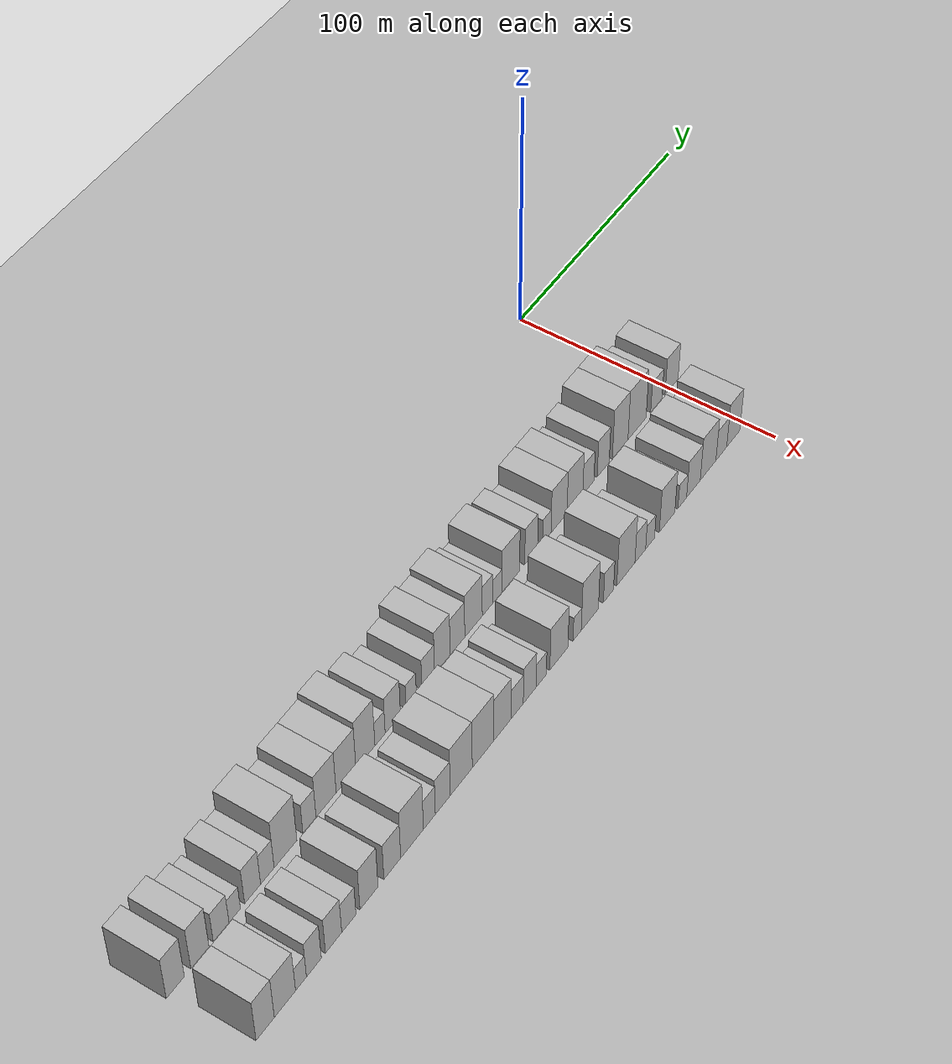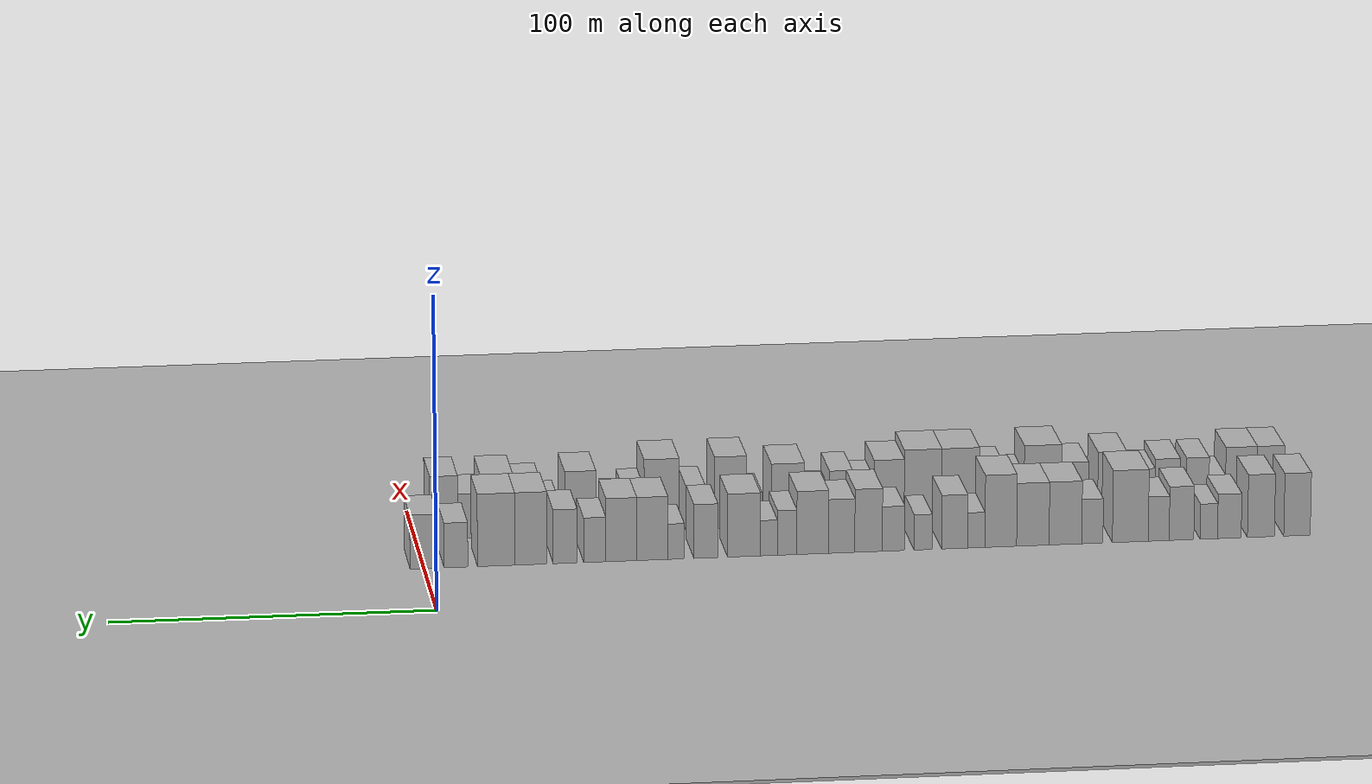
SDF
<sdf version="1.6">
 <world name="default">
  <include><name>ground_plane_1</name><uri>model://HANNAS_ground_plane</uri></include>
  <include>
   <name>ground_plane_2</name>
   <uri>model://HANNAS_ground_plane</uri>
   <pose>100 0 0  0 0 0</pose>
  </include>
  <model name="building_1">
   <static>1</static>
   <pose>50.0000 -273.7978 0 0.000000 0.000000 0.000000</pose>
   <link name="link">
    <pose>0 0 10.50 0 0 0</pose>
    <collision name="collision"><geometry><box><size>20.0000 8.4044 21.0000</size></box></geometry></collision>
    <visual name="visual">
     <cast_shadows>0</cast_shadows>
     <geometry><box><size>20.0000 8.4044 21.0000</size></box></geometry>
     <material>
      <script>
       <uri>model://HANNAS_wall/materials/scripts</uri>
       <uri>model://HANNAS_wall/materials/textures</uri>
       <name>vrc/HANNAS_wall</name>
      </script>
     </material>
    </visual>
   </link>
  </model>
  <model name="building_2">
   <static>1</static>
   <pose>50.0000 -262.3265 0 0.000000 0.000000 0.000000</pose>
   <link name="link">
    <pose>0 0 10.50 0 0 0</pose>
    <collision name="collision"><geometry><box><size>20.0000 8.5382 21.0000</size></box></geometry></collision>
    <visual name="visual">
     <cast_shadows>0</cast_shadows>
     <geometry><box><size>20.0000 8.5382 21.0000</size></box></geometry>
     <material>
      <script>
       <uri>model://HANNAS_wall/materials/scripts</uri>
       <uri>model://HANNAS_wall/materials/textures</uri>
       <name>vrc/HANNAS_wall</name>
      </script>
     </material>
    </visual>
   </link>
  </model>
  <model name="building_3">
   <static>1</static>
   <pose>50.0000 -252.3087 0 0.000000 0.000000 0.000000</pose>
   <link name="link">
    <pose>0 0 7.50 0 0 0</pose>
    <collision name="collision"><geometry><box><size>20.0000 7.4974 15.0000</size></box></geometry></collision>
    <visual name="visual">
     <cast_shadows>0</cast_shadows>
     <geometry><box><size>20.0000 7.4974 15.0000</size></box></geometry>
     <material>
      <script>
       <uri>model://HANNAS_wall/materials/scripts</uri>
       <uri>model://HANNAS_wall/materials/textures</uri>
       <name>vrc/HANNAS_wall</name>
      </script>
     </material>
    </visual>
   </link>
  </model>
  <model name="building_4">
   <static>1</static>
   <pose>50.0000 -245.8034 0 0.000000 0.000000 0.000000</pose>
   <link name="link">
    <pose>0 0 6.00 0 0 0</pose>
    <collision name="collision"><geometry><box><size>20.0000 5.5133 12.0000</size></box></geometry></collision>
    <visual name="visual">
     <cast_shadows>0</cast_shadows>
     <geometry><box><size>20.0000 5.5133 12.0000</size></box></geometry>
     <material>
      <script>
       <uri>model://HANNAS_wall/materials/scripts</uri>
       <uri>model://HANNAS_wall/materials/textures</uri>
       <name>vrc/HANNAS_wall</name>
      </script>
     </material>
    </visual>
   </link>
  </model>
  <model name="building_5">
   <static>1</static>
   <pose>50.0000 -237.1471 0 0.000000 0.000000 0.000000</pose>
   <link name="link">
    <pose>0 0 9.00 0 0 0</pose>
    <collision name="collision"><geometry><box><size>20.0000 7.7992 18.0000</size></box></geometry></collision>
    <visual name="visual">
     <cast_shadows>0</cast_shadows>
     <geometry><box><size>20.0000 7.7992 18.0000</size></box></geometry>
     <material>
      <script>
       <uri>model://HANNAS_wall/materials/scripts</uri>
       <uri>model://HANNAS_wall/materials/textures</uri>
       <name>vrc/HANNAS_wall</name>
      </script>
     </material>
    </visual>
   </link>
  </model>
  <model name="building_6">
   <static>1</static>
   <pose>50.0000 -229.9238 0 0.000000 0.000000 0.000000</pose>
   <link name="link">
    <pose>0 0 7.50 0 0 0</pose>
    <collision name="collision"><geometry><box><size>20.0000 6.6475 15.0000</size></box></geometry></collision>
    <visual name="visual">
     <cast_shadows>0</cast_shadows>
     <geometry><box><size>20.0000 6.6475 15.0000</size></box></geometry>
     <material>
      <script>
       <uri>model://HANNAS_wall/materials/scripts</uri>
       <uri>model://HANNAS_wall/materials/textures</uri>
       <name>vrc/HANNAS_wall</name>
      </script>
     </material>
    </visual>
   </link>
  </model>
  <model name="building_7">
   <static>1</static>
   <pose>50.0000 -220.9443 0 0.000000 0.000000 0.000000</pose>
   <link name="link">
    <pose>0 0 12.00 0 0 0</pose>
    <collision name="collision"><geometry><box><size>20.0000 11.3114 24.0000</size></box></geometry></collision>
    <visual name="visual">
     <cast_shadows>0</cast_shadows>
     <geometry><box><size>20.0000 11.3114 24.0000</size></box></geometry>
     <material>
      <script>
       <uri>model://HANNAS_wall/materials/scripts</uri>
       <uri>model://HANNAS_wall/materials/textures</uri>
       <name>vrc/HANNAS_wall</name>
      </script>
     </material>
    </visual>
   </link>
  </model>
  <model name="building_8">
   <static>1</static>
   <pose>50.0000 -208.9411 0 0.000000 0.000000 0.000000</pose>
   <link name="link">
    <pose>0 0 7.50 0 0 0</pose>
    <collision name="collision"><geometry><box><size>20.0000 6.6950 15.0000</size></box></geometry></collision>
    <visual name="visual">
     <cast_shadows>0</cast_shadows>
     <geometry><box><size>20.0000 6.6950 15.0000</size></box></geometry>
     <material>
      <script>
       <uri>model://HANNAS_wall/materials/scripts</uri>
       <uri>model://HANNAS_wall/materials/textures</uri>
       <name>vrc/HANNAS_wall</name>
      </script>
     </material>
    </visual>
   </link>
  </model>
  <model name="building_9">
   <static>1</static>
   <pose>50.0000 -200.4397 0 0.000000 0.000000 0.000000</pose>
   <link name="link">
    <pose>0 0 10.50 0 0 0</pose>
    <collision name="collision"><geometry><box><size>20.0000 10.3080 21.0000</size></box></geometry></collision>
    <visual name="visual">
     <cast_shadows>0</cast_shadows>
     <geometry><box><size>20.0000 10.3080 21.0000</size></box></geometry>
     <material>
      <script>
       <uri>model://HANNAS_wall/materials/scripts</uri>
       <uri>model://HANNAS_wall/materials/textures</uri>
       <name>vrc/HANNAS_wall</name>
      </script>
     </material>
    </visual>
   </link>
  </model>
  <model name="building_10">
   <static>1</static>
   <pose>50.0000 -190.1663 0 0.000000 0.000000 0.000000</pose>
   <link name="link">
    <pose>0 0 10.50 0 0 0</pose>
    <collision name="collision"><geometry><box><size>20.0000 10.2386 21.0000</size></box></geometry></collision>
    <visual name="visual">
     <cast_shadows>0</cast_shadows>
     <geometry><box><size>20.0000 10.2386 21.0000</size></box></geometry>
     <material>
      <script>
       <uri>model://HANNAS_wall/materials/scripts</uri>
       <uri>model://HANNAS_wall/materials/textures</uri>
       <name>vrc/HANNAS_wall</name>
      </script>
     </material>
    </visual>
   </link>
  </model>
  <model name="building_11">
   <static>1</static>
   <pose>50.0000 -180.0486 0 0.000000 0.000000 0.000000</pose>
   <link name="link">
    <pose>0 0 12.00 0 0 0</pose>
    <collision name="collision"><geometry><box><size>20.0000 9.9968 24.0000</size></box></geometry></collision>
    <visual name="visual">
     <cast_shadows>0</cast_shadows>
     <geometry><box><size>20.0000 9.9968 24.0000</size></box></geometry>
     <material>
      <script>
       <uri>model://HANNAS_wall/materials/scripts</uri>
       <uri>model://HANNAS_wall/materials/textures</uri>
       <name>vrc/HANNAS_wall</name>
      </script>
     </material>
    </visual>
   </link>
  </model>
  <model name="building_12">
   <static>1</static>
   <pose>50.0000 -172.3414 0 0.000000 0.000000 0.000000</pose>
   <link name="link">
    <pose>0 0 6.00 0 0 0</pose>
    <collision name="collision"><geometry><box><size>20.0000 5.4176 12.0000</size></box></geometry></collision>
    <visual name="visual">
     <cast_shadows>0</cast_shadows>
     <geometry><box><size>20.0000 5.4176 12.0000</size></box></geometry>
     <material>
      <script>
       <uri>model://HANNAS_wall/materials/scripts</uri>
       <uri>model://HANNAS_wall/materials/textures</uri>
       <name>vrc/HANNAS_wall</name>
      </script>
     </material>
    </visual>
   </link>
  </model>
  <model name="building_13">
   <static>1</static>
   <pose>50.0000 -165.5257 0 0.000000 0.000000 0.000000</pose>
   <link name="link">
    <pose>0 0 9.00 0 0 0</pose>
    <collision name="collision"><geometry><box><size>20.0000 8.2139 18.0000</size></box></geometry></collision>
    <visual name="visual">
     <cast_shadows>0</cast_shadows>
     <geometry><box><size>20.0000 8.2139 18.0000</size></box></geometry>
     <material>
      <script>
       <uri>model://HANNAS_wall/materials/scripts</uri>
       <uri>model://HANNAS_wall/materials/textures</uri>
       <name>vrc/HANNAS_wall</name>
      </script>
     </material>
    </visual>
   </link>
  </model>
  <model name="building_14">
   <static>1</static>
   <pose>50.0000 -155.6016 0 0.000000 0.000000 0.000000</pose>
   <link name="link">
    <pose>0 0 6.00 0 0 0</pose>
    <collision name="collision"><geometry><box><size>20.0000 5.6343 12.0000</size></box></geometry></collision>
    <visual name="visual">
     <cast_shadows>0</cast_shadows>
     <geometry><box><size>20.0000 5.6343 12.0000</size></box></geometry>
     <material>
      <script>
       <uri>model://HANNAS_wall/materials/scripts</uri>
       <uri>model://HANNAS_wall/materials/textures</uri>
       <name>vrc/HANNAS_wall</name>
      </script>
     </material>
    </visual>
   </link>
  </model>
  <model name="building_15">
   <static>1</static>
   <pose>50.0000 -146.2886 0 0.000000 0.000000 0.000000</pose>
   <link name="link">
    <pose>0 0 7.50 0 0 0</pose>
    <collision name="collision"><geometry><box><size>20.0000 6.9917 15.0000</size></box></geometry></collision>
    <visual name="visual">
     <cast_shadows>0</cast_shadows>
     <geometry><box><size>20.0000 6.9917 15.0000</size></box></geometry>
     <material>
      <script>
       <uri>model://HANNAS_wall/materials/scripts</uri>
       <uri>model://HANNAS_wall/materials/textures</uri>
       <name>vrc/HANNAS_wall</name>
      </script>
     </material>
    </visual>
   </link>
  </model>
  <model name="building_16">
   <static>1</static>
   <pose>50.0000 -138.4648 0 0.000000 0.000000 0.000000</pose>
   <link name="link">
    <pose>0 0 10.50 0 0 0</pose>
    <collision name="collision"><geometry><box><size>20.0000 8.6559 21.0000</size></box></geometry></collision>
    <visual name="visual">
     <cast_shadows>0</cast_shadows>
     <geometry><box><size>20.0000 8.6559 21.0000</size></box></geometry>
     <material>
      <script>
       <uri>model://HANNAS_wall/materials/scripts</uri>
       <uri>model://HANNAS_wall/materials/textures</uri>
       <name>vrc/HANNAS_wall</name>
      </script>
     </material>
    </visual>
   </link>
  </model>
  <model name="building_17">
   <static>1</static>
   <pose>50.0000 -130.0193 0 0.000000 0.000000 0.000000</pose>
   <link name="link">
    <pose>0 0 9.00 0 0 0</pose>
    <collision name="collision"><geometry><box><size>20.0000 8.2351 18.0000</size></box></geometry></collision>
    <visual name="visual">
     <cast_shadows>0</cast_shadows>
     <geometry><box><size>20.0000 8.2351 18.0000</size></box></geometry>
     <material>
      <script>
       <uri>model://HANNAS_wall/materials/scripts</uri>
       <uri>model://HANNAS_wall/materials/textures</uri>
       <name>vrc/HANNAS_wall</name>
      </script>
     </material>
    </visual>
   </link>
  </model>
  <model name="building_18">
   <static>1</static>
   <pose>50.0000 -120.9376 0 0.000000 0.000000 0.000000</pose>
   <link name="link">
    <pose>0 0 10.50 0 0 0</pose>
    <collision name="collision"><geometry><box><size>20.0000 9.9283 21.0000</size></box></geometry></collision>
    <visual name="visual">
     <cast_shadows>0</cast_shadows>
     <geometry><box><size>20.0000 9.9283 21.0000</size></box></geometry>
     <material>
      <script>
       <uri>model://HANNAS_wall/materials/scripts</uri>
       <uri>model://HANNAS_wall/materials/textures</uri>
       <name>vrc/HANNAS_wall</name>
      </script>
     </material>
    </visual>
   </link>
  </model>
  <model name="building_19">
   <static>1</static>
   <pose>50.0000 -112.9268 0 0.000000 0.000000 0.000000</pose>
   <link name="link">
    <pose>0 0 7.50 0 0 0</pose>
    <collision name="collision"><geometry><box><size>20.0000 6.0931 15.0000</size></box></geometry></collision>
    <visual name="visual">
     <cast_shadows>0</cast_shadows>
     <geometry><box><size>20.0000 6.0931 15.0000</size></box></geometry>
     <material>
      <script>
       <uri>model://HANNAS_wall/materials/scripts</uri>
       <uri>model://HANNAS_wall/materials/textures</uri>
       <name>vrc/HANNAS_wall</name>
      </script>
     </material>
    </visual>
   </link>
  </model>
  <model name="building_20">
   <static>1</static>
   <pose>50.0000 -107.2331 0 0.000000 0.000000 0.000000</pose>
   <link name="link">
    <pose>0 0 6.00 0 0 0</pose>
    <collision name="collision"><geometry><box><size>20.0000 5.2942 12.0000</size></box></geometry></collision>
    <visual name="visual">
     <cast_shadows>0</cast_shadows>
     <geometry><box><size>20.0000 5.2942 12.0000</size></box></geometry>
     <material>
      <script>
       <uri>model://HANNAS_wall/materials/scripts</uri>
       <uri>model://HANNAS_wall/materials/textures</uri>
       <name>vrc/HANNAS_wall</name>
      </script>
     </material>
    </visual>
   </link>
  </model>
  <model name="building_21">
   <static>1</static>
   <pose>50.0000 -99.4346 0 0.000000 0.000000 0.000000</pose>
   <link name="link">
    <pose>0 0 10.50 0 0 0</pose>
    <collision name="collision"><geometry><box><size>20.0000 10.3028 21.0000</size></box></geometry></collision>
    <visual name="visual">
     <cast_shadows>0</cast_shadows>
     <geometry><box><size>20.0000 10.3028 21.0000</size></box></geometry>
     <material>
      <script>
       <uri>model://HANNAS_wall/materials/scripts</uri>
       <uri>model://HANNAS_wall/materials/textures</uri>
       <name>vrc/HANNAS_wall</name>
      </script>
     </material>
    </visual>
   </link>
  </model>
  <model name="building_22">
   <static>1</static>
   <pose>50.0000 -87.5052 0 0.000000 0.000000 0.000000</pose>
   <link name="link">
    <pose>0 0 9.00 0 0 0</pose>
    <collision name="collision"><geometry><box><size>20.0000 7.5561 18.0000</size></box></geometry></collision>
    <visual name="visual">
     <cast_shadows>0</cast_shadows>
     <geometry><box><size>20.0000 7.5561 18.0000</size></box></geometry>
     <material>
      <script>
       <uri>model://HANNAS_wall/materials/scripts</uri>
       <uri>model://HANNAS_wall/materials/textures</uri>
       <name>vrc/HANNAS_wall</name>
      </script>
     </material>
    </visual>
   </link>
  </model>
  <model name="building_23">
   <static>1</static>
   <pose>50.0000 -78.1779 0 0.000000 0.000000 0.000000</pose>
   <link name="link">
    <pose>0 0 6.00 0 0 0</pose>
    <collision name="collision"><geometry><box><size>20.0000 5.0985 12.0000</size></box></geometry></collision>
    <visual name="visual">
     <cast_shadows>0</cast_shadows>
     <geometry><box><size>20.0000 5.0985 12.0000</size></box></geometry>
     <material>
      <script>
       <uri>model://HANNAS_wall/materials/scripts</uri>
       <uri>model://HANNAS_wall/materials/textures</uri>
       <name>vrc/HANNAS_wall</name>
      </script>
     </material>
    </visual>
   </link>
  </model>
  <model name="building_24">
   <static>1</static>
   <pose>50.0000 -70.7922 0 0.000000 0.000000 0.000000</pose>
   <link name="link">
    <pose>0 0 10.50 0 0 0</pose>
    <collision name="collision"><geometry><box><size>20.0000 9.6729 21.0000</size></box></geometry></collision>
    <visual name="visual">
     <cast_shadows>0</cast_shadows>
     <geometry><box><size>20.0000 9.6729 21.0000</size></box></geometry>
     <material>
      <script>
       <uri>model://HANNAS_wall/materials/scripts</uri>
       <uri>model://HANNAS_wall/materials/textures</uri>
       <name>vrc/HANNAS_wall</name>
      </script>
     </material>
    </visual>
   </link>
  </model>
  <model name="building_25">
   <static>1</static>
   <pose>50.0000 -61.1262 0 0.000000 0.000000 0.000000</pose>
   <link name="link">
    <pose>0 0 10.50 0 0 0</pose>
    <collision name="collision"><geometry><box><size>20.0000 9.6592 21.0000</size></box></geometry></collision>
    <visual name="visual">
     <cast_shadows>0</cast_shadows>
     <geometry><box><size>20.0000 9.6592 21.0000</size></box></geometry>
     <material>
      <script>
       <uri>model://HANNAS_wall/materials/scripts</uri>
       <uri>model://HANNAS_wall/materials/textures</uri>
       <name>vrc/HANNAS_wall</name>
      </script>
     </material>
    </visual>
   </link>
  </model>
  <model name="building_26">
   <static>1</static>
   <pose>50.0000 -52.8360 0 0.000000 0.000000 0.000000</pose>
   <link name="link">
    <pose>0 0 7.50 0 0 0</pose>
    <collision name="collision"><geometry><box><size>20.0000 6.9211 15.0000</size></box></geometry></collision>
    <visual name="visual">
     <cast_shadows>0</cast_shadows>
     <geometry><box><size>20.0000 6.9211 15.0000</size></box></geometry>
     <material>
      <script>
       <uri>model://HANNAS_wall/materials/scripts</uri>
       <uri>model://HANNAS_wall/materials/textures</uri>
       <name>vrc/HANNAS_wall</name>
      </script>
     </material>
    </visual>
   </link>
  </model>
  <model name="building_27">
   <static>1</static>
   <pose>50.0000 -43.6139 0 0.000000 0.000000 0.000000</pose>
   <link name="link">
    <pose>0 0 9.00 0 0 0</pose>
    <collision name="collision"><geometry><box><size>20.0000 7.5232 18.0000</size></box></geometry></collision>
    <visual name="visual">
     <cast_shadows>0</cast_shadows>
     <geometry><box><size>20.0000 7.5232 18.0000</size></box></geometry>
     <material>
      <script>
       <uri>model://HANNAS_wall/materials/scripts</uri>
       <uri>model://HANNAS_wall/materials/textures</uri>
       <name>vrc/HANNAS_wall</name>
      </script>
     </material>
    </visual>
   </link>
  </model>
  <model name="building_28">
   <static>1</static>
   <pose>50.0000 -32.9053 0 0.000000 0.000000 0.000000</pose>
   <link name="link">
    <pose>0 0 12.00 0 0 0</pose>
    <collision name="collision"><geometry><box><size>20.0000 9.8939 24.0000</size></box></geometry></collision>
    <visual name="visual">
     <cast_shadows>0</cast_shadows>
     <geometry><box><size>20.0000 9.8939 24.0000</size></box></geometry>
     <material>
      <script>
       <uri>model://HANNAS_wall/materials/scripts</uri>
       <uri>model://HANNAS_wall/materials/textures</uri>
       <name>vrc/HANNAS_wall</name>
      </script>
     </material>
    </visual>
   </link>
  </model>
  <model name="building_29">
   <static>1</static>
   <pose>50.0000 -22.1314 0 0.000000 0.000000 0.000000</pose>
   <link name="link">
    <pose>0 0 12.00 0 0 0</pose>
    <collision name="collision"><geometry><box><size>20.0000 11.6541 24.0000</size></box></geometry></collision>
    <visual name="visual">
     <cast_shadows>0</cast_shadows>
     <geometry><box><size>20.0000 11.6541 24.0000</size></box></geometry>
     <material>
      <script>
       <uri>model://HANNAS_wall/materials/scripts</uri>
       <uri>model://HANNAS_wall/materials/textures</uri>
       <name>vrc/HANNAS_wall</name>
      </script>
     </material>
    </visual>
   </link>
  </model>
  <model name="building_30">
   <static>1</static>
   <pose>50.0000 -9.6206 0 0.000000 0.000000 0.000000</pose>
   <link name="link">
    <pose>0 0 7.50 0 0 0</pose>
    <collision name="collision"><geometry><box><size>20.0000 7.3675 15.0000</size></box></geometry></collision>
    <visual name="visual">
     <cast_shadows>0</cast_shadows>
     <geometry><box><size>20.0000 7.3675 15.0000</size></box></geometry>
     <material>
      <script>
       <uri>model://HANNAS_wall/materials/scripts</uri>
       <uri>model://HANNAS_wall/materials/textures</uri>
       <name>vrc/HANNAS_wall</name>
      </script>
     </material>
    </visual>
   </link>
  </model>
  <model name="building_31">
   <static>1</static>
   <pose>50.0000 0.3576 0 0.000000 0.000000 0.000000</pose>
   <link name="link">
    <pose>0 0 9.00 0 0 0</pose>
    <collision name="collision"><geometry><box><size>20.0000 8.5888 18.0000</size></box></geometry></collision>
    <visual name="visual">
     <cast_shadows>0</cast_shadows>
     <geometry><box><size>20.0000 8.5888 18.0000</size></box></geometry>
     <material>
      <script>
       <uri>model://HANNAS_wall/materials/scripts</uri>
       <uri>model://HANNAS_wall/materials/textures</uri>
       <name>vrc/HANNAS_wall</name>
      </script>
     </material>
    </visual>
   </link>
  </model>
  <model name="building_62">
   <static>1</static>
   <pose>79.0000 -270.6791 0 0.000000 0.000000 0.000000</pose>
   <link name="link">
    <pose>0 0 10.50 0 0 0</pose>
    <collision name="collision"><geometry><box><size>20.0000 8.6419 21.0000</size></box></geometry></collision>
    <visual name="visual">
     <cast_shadows>0</cast_shadows>
     <geometry><box><size>20.0000 8.6419 21.0000</size></box></geometry>
     <material>
      <script>
       <uri>model://HANNAS_wall/materials/scripts</uri>
       <uri>model://HANNAS_wall/materials/textures</uri>
       <name>vrc/HANNAS_wall</name>
      </script>
     </material>
    </visual>
   </link>
  </model>
  <model name="building_63">
   <static>1</static>
   <pose>79.0000 -261.2959 0 0.000000 0.000000 0.000000</pose>
   <link name="link">
    <pose>0 0 10.50 0 0 0</pose>
    <collision name="collision"><geometry><box><size>20.0000 10.1245 21.0000</size></box></geometry></collision>
    <visual name="visual">
     <cast_shadows>0</cast_shadows>
     <geometry><box><size>20.0000 10.1245 21.0000</size></box></geometry>
     <material>
      <script>
       <uri>model://HANNAS_wall/materials/scripts</uri>
       <uri>model://HANNAS_wall/materials/textures</uri>
       <name>vrc/HANNAS_wall</name>
      </script>
     </material>
    </visual>
   </link>
  </model>
  <model name="building_64">
   <static>1</static>
   <pose>79.0000 -253.6037 0 0.000000 0.000000 0.000000</pose>
   <link name="link">
    <pose>0 0 6.00 0 0 0</pose>
    <collision name="collision"><geometry><box><size>20.0000 5.2600 12.0000</size></box></geometry></collision>
    <visual name="visual">
     <cast_shadows>0</cast_shadows>
     <geometry><box><size>20.0000 5.2600 12.0000</size></box></geometry>
     <material>
      <script>
       <uri>model://HANNAS_wall/materials/scripts</uri>
       <uri>model://HANNAS_wall/materials/textures</uri>
       <name>vrc/HANNAS_wall</name>
      </script>
     </material>
    </visual>
   </link>
  </model>
  <model name="building_65">
   <static>1</static>
   <pose>79.0000 -247.3460 0 0.000000 0.000000 0.000000</pose>
   <link name="link">
    <pose>0 0 9.00 0 0 0</pose>
    <collision name="collision"><geometry><box><size>20.0000 7.2553 18.0000</size></box></geometry></collision>
    <visual name="visual">
     <cast_shadows>0</cast_shadows>
     <geometry><box><size>20.0000 7.2553 18.0000</size></box></geometry>
     <material>
      <script>
       <uri>model://HANNAS_wall/materials/scripts</uri>
       <uri>model://HANNAS_wall/materials/textures</uri>
       <name>vrc/HANNAS_wall</name>
      </script>
     </material>
    </visual>
   </link>
  </model>
  <model name="building_66">
   <static>1</static>
   <pose>79.0000 -237.7049 0 0.000000 0.000000 0.000000</pose>
   <link name="link">
    <pose>0 0 9.00 0 0 0</pose>
    <collision name="collision"><geometry><box><size>20.0000 8.0270 18.0000</size></box></geometry></collision>
    <visual name="visual">
     <cast_shadows>0</cast_shadows>
     <geometry><box><size>20.0000 8.0270 18.0000</size></box></geometry>
     <material>
      <script>
       <uri>model://HANNAS_wall/materials/scripts</uri>
       <uri>model://HANNAS_wall/materials/textures</uri>
       <name>vrc/HANNAS_wall</name>
      </script>
     </material>
    </visual>
   </link>
  </model>
  <model name="building_67">
   <static>1</static>
   <pose>79.0000 -230.1303 0 0.000000 0.000000 0.000000</pose>
   <link name="link">
    <pose>0 0 7.50 0 0 0</pose>
    <collision name="collision"><geometry><box><size>20.0000 7.1221 15.0000</size></box></geometry></collision>
    <visual name="visual">
     <cast_shadows>0</cast_shadows>
     <geometry><box><size>20.0000 7.1221 15.0000</size></box></geometry>
     <material>
      <script>
       <uri>model://HANNAS_wall/materials/scripts</uri>
       <uri>model://HANNAS_wall/materials/textures</uri>
       <name>vrc/HANNAS_wall</name>
      </script>
     </material>
    </visual>
   </link>
  </model>
  <model name="building_68">
   <static>1</static>
   <pose>79.0000 -220.0024 0 0.000000 0.000000 0.000000</pose>
   <link name="link">
    <pose>0 0 10.50 0 0 0</pose>
    <collision name="collision"><geometry><box><size>20.0000 9.1338 21.0000</size></box></geometry></collision>
    <visual name="visual">
     <cast_shadows>0</cast_shadows>
     <geometry><box><size>20.0000 9.1338 21.0000</size></box></geometry>
     <material>
      <script>
       <uri>model://HANNAS_wall/materials/scripts</uri>
       <uri>model://HANNAS_wall/materials/textures</uri>
       <name>vrc/HANNAS_wall</name>
      </script>
     </material>
    </visual>
   </link>
  </model>
  <model name="building_69">
   <static>1</static>
   <pose>79.0000 -208.1065 0 0.000000 0.000000 0.000000</pose>
   <link name="link">
    <pose>0 0 9.00 0 0 0</pose>
    <collision name="collision"><geometry><box><size>20.0000 8.6578 18.0000</size></box></geometry></collision>
    <visual name="visual">
     <cast_shadows>0</cast_shadows>
     <geometry><box><size>20.0000 8.6578 18.0000</size></box></geometry>
     <material>
      <script>
       <uri>model://HANNAS_wall/materials/scripts</uri>
       <uri>model://HANNAS_wall/materials/textures</uri>
       <name>vrc/HANNAS_wall</name>
      </script>
     </material>
    </visual>
   </link>
  </model>
  <model name="building_70">
   <static>1</static>
   <pose>79.0000 -197.8591 0 0.000000 0.000000 0.000000</pose>
   <link name="link">
    <pose>0 0 12.00 0 0 0</pose>
    <collision name="collision"><geometry><box><size>20.0000 11.8370 24.0000</size></box></geometry></collision>
    <visual name="visual">
     <cast_shadows>0</cast_shadows>
     <geometry><box><size>20.0000 11.8370 24.0000</size></box></geometry>
     <material>
      <script>
       <uri>model://HANNAS_wall/materials/scripts</uri>
       <uri>model://HANNAS_wall/materials/textures</uri>
       <name>vrc/HANNAS_wall</name>
      </script>
     </material>
    </visual>
   </link>
  </model>
  <model name="building_71">
   <static>1</static>
   <pose>79.0000 -188.7958 0 0.000000 0.000000 0.000000</pose>
   <link name="link">
    <pose>0 0 7.50 0 0 0</pose>
    <collision name="collision"><geometry><box><size>20.0000 6.2895 15.0000</size></box></geometry></collision>
    <visual name="visual">
     <cast_shadows>0</cast_shadows>
     <geometry><box><size>20.0000 6.2895 15.0000</size></box></geometry>
     <material>
      <script>
       <uri>model://HANNAS_wall/materials/scripts</uri>
       <uri>model://HANNAS_wall/materials/textures</uri>
       <name>vrc/HANNAS_wall</name>
      </script>
     </material>
    </visual>
   </link>
  </model>
  <model name="building_72">
   <static>1</static>
   <pose>79.0000 -181.6646 0 0.000000 0.000000 0.000000</pose>
   <link name="link">
    <pose>0 0 9.00 0 0 0</pose>
    <collision name="collision"><geometry><box><size>20.0000 7.9730 18.0000</size></box></geometry></collision>
    <visual name="visual">
     <cast_shadows>0</cast_shadows>
     <geometry><box><size>20.0000 7.9730 18.0000</size></box></geometry>
     <material>
      <script>
       <uri>model://HANNAS_wall/materials/scripts</uri>
       <uri>model://HANNAS_wall/materials/textures</uri>
       <name>vrc/HANNAS_wall</name>
      </script>
     </material>
    </visual>
   </link>
  </model>
  <model name="building_73">
   <static>1</static>
   <pose>79.0000 -171.7264 0 0.000000 0.000000 0.000000</pose>
   <link name="link">
    <pose>0 0 12.00 0 0 0</pose>
    <collision name="collision"><geometry><box><size>20.0000 11.9034 24.0000</size></box></geometry></collision>
    <visual name="visual">
     <cast_shadows>0</cast_shadows>
     <geometry><box><size>20.0000 11.9034 24.0000</size></box></geometry>
     <material>
      <script>
       <uri>model://HANNAS_wall/materials/scripts</uri>
       <uri>model://HANNAS_wall/materials/textures</uri>
       <name>vrc/HANNAS_wall</name>
      </script>
     </material>
    </visual>
   </link>
  </model>
  <model name="building_74">
   <static>1</static>
   <pose>79.0000 -159.8148 0 0.000000 0.000000 0.000000</pose>
   <link name="link">
    <pose>0 0 12.00 0 0 0</pose>
    <collision name="collision"><geometry><box><size>20.0000 11.9200 24.0000</size></box></geometry></collision>
    <visual name="visual">
     <cast_shadows>0</cast_shadows>
     <geometry><box><size>20.0000 11.9200 24.0000</size></box></geometry>
     <material>
      <script>
       <uri>model://HANNAS_wall/materials/scripts</uri>
       <uri>model://HANNAS_wall/materials/textures</uri>
       <name>vrc/HANNAS_wall</name>
      </script>
     </material>
    </visual>
   </link>
  </model>
  <model name="building_75">
   <static>1</static>
   <pose>79.0000 -149.0634 0 0.000000 0.000000 0.000000</pose>
   <link name="link">
    <pose>0 0 10.50 0 0 0</pose>
    <collision name="collision"><geometry><box><size>20.0000 9.5827 21.0000</size></box></geometry></collision>
    <visual name="visual">
     <cast_shadows>0</cast_shadows>
     <geometry><box><size>20.0000 9.5827 21.0000</size></box></geometry>
     <material>
      <script>
       <uri>model://HANNAS_wall/materials/scripts</uri>
       <uri>model://HANNAS_wall/materials/textures</uri>
       <name>vrc/HANNAS_wall</name>
      </script>
     </material>
    </visual>
   </link>
  </model>
  <model name="building_76">
   <static>1</static>
   <pose>79.0000 -140.8687 0 0.000000 0.000000 0.000000</pose>
   <link name="link">
    <pose>0 0 7.50 0 0 0</pose>
    <collision name="collision"><geometry><box><size>20.0000 6.8067 15.0000</size></box></geometry></collision>
    <visual name="visual">
     <cast_shadows>0</cast_shadows>
     <geometry><box><size>20.0000 6.8067 15.0000</size></box></geometry>
     <material>
      <script>
       <uri>model://HANNAS_wall/materials/scripts</uri>
       <uri>model://HANNAS_wall/materials/textures</uri>
       <name>vrc/HANNAS_wall</name>
      </script>
     </material>
    </visual>
   </link>
  </model>
  <model name="building_77">
   <static>1</static>
   <pose>79.0000 -133.8060 0 0.000000 0.000000 0.000000</pose>
   <link name="link">
    <pose>0 0 9.00 0 0 0</pose>
    <collision name="collision"><geometry><box><size>20.0000 7.3188 18.0000</size></box></geometry></collision>
    <visual name="visual">
     <cast_shadows>0</cast_shadows>
     <geometry><box><size>20.0000 7.3188 18.0000</size></box></geometry>
     <material>
      <script>
       <uri>model://HANNAS_wall/materials/scripts</uri>
       <uri>model://HANNAS_wall/materials/textures</uri>
       <name>vrc/HANNAS_wall</name>
      </script>
     </material>
    </visual>
   </link>
  </model>
  <model name="building_78">
   <static>1</static>
   <pose>79.0000 -127.2104 0 0.000000 0.000000 0.000000</pose>
   <link name="link">
    <pose>0 0 6.00 0 0 0</pose>
    <collision name="collision"><geometry><box><size>20.0000 5.8723 12.0000</size></box></geometry></collision>
    <visual name="visual">
     <cast_shadows>0</cast_shadows>
     <geometry><box><size>20.0000 5.8723 12.0000</size></box></geometry>
     <material>
      <script>
       <uri>model://HANNAS_wall/materials/scripts</uri>
       <uri>model://HANNAS_wall/materials/textures</uri>
       <name>vrc/HANNAS_wall</name>
      </script>
     </material>
    </visual>
   </link>
  </model>
  <model name="building_79">
   <static>1</static>
   <pose>79.0000 -117.0247 0 0.000000 0.000000 0.000000</pose>
   <link name="link">
    <pose>0 0 10.50 0 0 0</pose>
    <collision name="collision"><geometry><box><size>20.0000 10.4992 21.0000</size></box></geometry></collision>
    <visual name="visual">
     <cast_shadows>0</cast_shadows>
     <geometry><box><size>20.0000 10.4992 21.0000</size></box></geometry>
     <material>
      <script>
       <uri>model://HANNAS_wall/materials/scripts</uri>
       <uri>model://HANNAS_wall/materials/textures</uri>
       <name>vrc/HANNAS_wall</name>
      </script>
     </material>
    </visual>
   </link>
  </model>
  <model name="building_80">
   <static>1</static>
   <pose>79.0000 -106.3721 0 0.000000 0.000000 0.000000</pose>
   <link name="link">
    <pose>0 0 6.00 0 0 0</pose>
    <collision name="collision"><geometry><box><size>20.0000 4.8060 12.0000</size></box></geometry></collision>
    <visual name="visual">
     <cast_shadows>0</cast_shadows>
     <geometry><box><size>20.0000 4.8060 12.0000</size></box></geometry>
     <material>
      <script>
       <uri>model://HANNAS_wall/materials/scripts</uri>
       <uri>model://HANNAS_wall/materials/textures</uri>
       <name>vrc/HANNAS_wall</name>
      </script>
     </material>
    </visual>
   </link>
  </model>
  <model name="building_81">
   <static>1</static>
   <pose>79.0000 -98.8822 0 0.000000 0.000000 0.000000</pose>
   <link name="link">
    <pose>0 0 12.00 0 0 0</pose>
    <collision name="collision"><geometry><box><size>20.0000 10.1737 24.0000</size></box></geometry></collision>
    <visual name="visual">
     <cast_shadows>0</cast_shadows>
     <geometry><box><size>20.0000 10.1737 24.0000</size></box></geometry>
     <material>
      <script>
       <uri>model://HANNAS_wall/materials/scripts</uri>
       <uri>model://HANNAS_wall/materials/textures</uri>
       <name>vrc/HANNAS_wall</name>
      </script>
     </material>
    </visual>
   </link>
  </model>
  <model name="building_82">
   <static>1</static>
   <pose>79.0000 -87.7382 0 0.000000 0.000000 0.000000</pose>
   <link name="link">
    <pose>0 0 7.50 0 0 0</pose>
    <collision name="collision"><geometry><box><size>20.0000 6.1144 15.0000</size></box></geometry></collision>
    <visual name="visual">
     <cast_shadows>0</cast_shadows>
     <geometry><box><size>20.0000 6.1144 15.0000</size></box></geometry>
     <material>
      <script>
       <uri>model://HANNAS_wall/materials/scripts</uri>
       <uri>model://HANNAS_wall/materials/textures</uri>
       <name>vrc/HANNAS_wall</name>
      </script>
     </material>
    </visual>
   </link>
  </model>
  <model name="building_83">
   <static>1</static>
   <pose>79.0000 -77.1380 0 0.000000 0.000000 0.000000</pose>
   <link name="link">
    <pose>0 0 12.00 0 0 0</pose>
    <collision name="collision"><geometry><box><size>20.0000 11.0860 24.0000</size></box></geometry></collision>
    <visual name="visual">
     <cast_shadows>0</cast_shadows>
     <geometry><box><size>20.0000 11.0860 24.0000</size></box></geometry>
     <material>
      <script>
       <uri>model://HANNAS_wall/materials/scripts</uri>
       <uri>model://HANNAS_wall/materials/textures</uri>
       <name>vrc/HANNAS_wall</name>
      </script>
     </material>
    </visual>
   </link>
  </model>
  <model name="building_84">
   <static>1</static>
   <pose>79.0000 -68.2755 0 0.000000 0.000000 0.000000</pose>
   <link name="link">
    <pose>0 0 7.50 0 0 0</pose>
    <collision name="collision"><geometry><box><size>20.0000 6.6390 15.0000</size></box></geometry></collision>
    <visual name="visual">
     <cast_shadows>0</cast_shadows>
     <geometry><box><size>20.0000 6.6390 15.0000</size></box></geometry>
     <material>
      <script>
       <uri>model://HANNAS_wall/materials/scripts</uri>
       <uri>model://HANNAS_wall/materials/textures</uri>
       <name>vrc/HANNAS_wall</name>
      </script>
     </material>
    </visual>
   </link>
  </model>
  <model name="building_85">
   <static>1</static>
   <pose>79.0000 -62.1964 0 0.000000 0.000000 0.000000</pose>
   <link name="link">
    <pose>0 0 6.00 0 0 0</pose>
    <collision name="collision"><geometry><box><size>20.0000 5.5193 12.0000</size></box></geometry></collision>
    <visual name="visual">
     <cast_shadows>0</cast_shadows>
     <geometry><box><size>20.0000 5.5193 12.0000</size></box></geometry>
     <material>
      <script>
       <uri>model://HANNAS_wall/materials/scripts</uri>
       <uri>model://HANNAS_wall/materials/textures</uri>
       <name>vrc/HANNAS_wall</name>
      </script>
     </material>
    </visual>
   </link>
  </model>
  <model name="building_86">
   <static>1</static>
   <pose>79.0000 -51.5392 0 0.000000 0.000000 0.000000</pose>
   <link name="link">
    <pose>0 0 10.50 0 0 0</pose>
    <collision name="collision"><geometry><box><size>20.0000 9.7949 21.0000</size></box></geometry></collision>
    <visual name="visual">
     <cast_shadows>0</cast_shadows>
     <geometry><box><size>20.0000 9.7949 21.0000</size></box></geometry>
     <material>
      <script>
       <uri>model://HANNAS_wall/materials/scripts</uri>
       <uri>model://HANNAS_wall/materials/textures</uri>
       <name>vrc/HANNAS_wall</name>
      </script>
     </material>
    </visual>
   </link>
  </model>
  <model name="building_87">
   <static>1</static>
   <pose>79.0000 -41.8883 0 0.000000 0.000000 0.000000</pose>
   <link name="link">
    <pose>0 0 6.00 0 0 0</pose>
    <collision name="collision"><geometry><box><size>20.0000 5.5070 12.0000</size></box></geometry></collision>
    <visual name="visual">
     <cast_shadows>0</cast_shadows>
     <geometry><box><size>20.0000 5.5070 12.0000</size></box></geometry>
     <material>
      <script>
       <uri>model://HANNAS_wall/materials/scripts</uri>
       <uri>model://HANNAS_wall/materials/textures</uri>
       <name>vrc/HANNAS_wall</name>
      </script>
     </material>
    </visual>
   </link>
  </model>
  <model name="building_88">
   <static>1</static>
   <pose>79.0000 -34.7272 0 0.000000 0.000000 0.000000</pose>
   <link name="link">
    <pose>0 0 9.00 0 0 0</pose>
    <collision name="collision"><geometry><box><size>20.0000 8.8151 18.0000</size></box></geometry></collision>
    <visual name="visual">
     <cast_shadows>0</cast_shadows>
     <geometry><box><size>20.0000 8.8151 18.0000</size></box></geometry>
     <material>
      <script>
       <uri>model://HANNAS_wall/materials/scripts</uri>
       <uri>model://HANNAS_wall/materials/textures</uri>
       <name>vrc/HANNAS_wall</name>
      </script>
     </material>
    </visual>
   </link>
  </model>
  <model name="building_89">
   <static>1</static>
   <pose>79.0000 -25.2042 0 0.000000 0.000000 0.000000</pose>
   <link name="link">
    <pose>0 0 10.50 0 0 0</pose>
    <collision name="collision"><geometry><box><size>20.0000 10.2308 21.0000</size></box></geometry></collision>
    <visual name="visual">
     <cast_shadows>0</cast_shadows>
     <geometry><box><size>20.0000 10.2308 21.0000</size></box></geometry>
     <material>
      <script>
       <uri>model://HANNAS_wall/materials/scripts</uri>
       <uri>model://HANNAS_wall/materials/textures</uri>
       <name>vrc/HANNAS_wall</name>
      </script>
     </material>
    </visual>
   </link>
  </model>
  <model name="building_90">
   <static>1</static>
   <pose>79.0000 -16.5331 0 0.000000 0.000000 0.000000</pose>
   <link name="link">
    <pose>0 0 7.50 0 0 0</pose>
    <collision name="collision"><geometry><box><size>20.0000 7.1116 15.0000</size></box></geometry></collision>
    <visual name="visual">
     <cast_shadows>0</cast_shadows>
     <geometry><box><size>20.0000 7.1116 15.0000</size></box></geometry>
     <material>
      <script>
       <uri>model://HANNAS_wall/materials/scripts</uri>
       <uri>model://HANNAS_wall/materials/textures</uri>
       <name>vrc/HANNAS_wall</name>
      </script>
     </material>
    </visual>
   </link>
  </model>
  <model name="building_91">
   <static>1</static>
   <pose>79.0000 -8.6193 0 0.000000 0.000000 0.000000</pose>
   <link name="link">
    <pose>0 0 10.50 0 0 0</pose>
    <collision name="collision"><geometry><box><size>20.0000 8.7160 21.0000</size></box></geometry></collision>
    <visual name="visual">
     <cast_shadows>0</cast_shadows>
     <geometry><box><size>20.0000 8.7160 21.0000</size></box></geometry>
     <material>
      <script>
       <uri>model://HANNAS_wall/materials/scripts</uri>
       <uri>model://HANNAS_wall/materials/textures</uri>
       <name>vrc/HANNAS_wall</name>
      </script>
     </material>
    </visual>
   </link>
  </model>
 </world>
</sdf>
